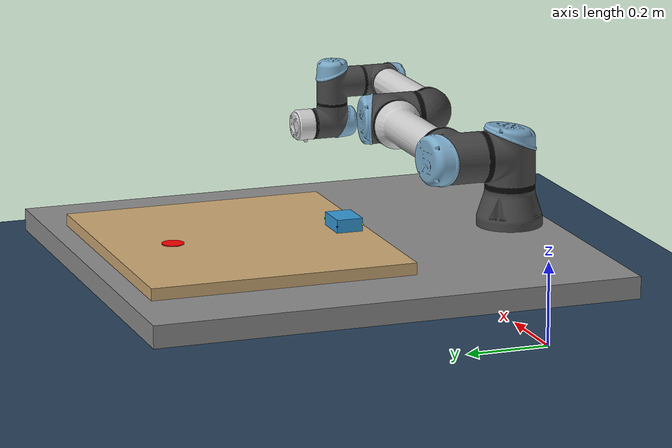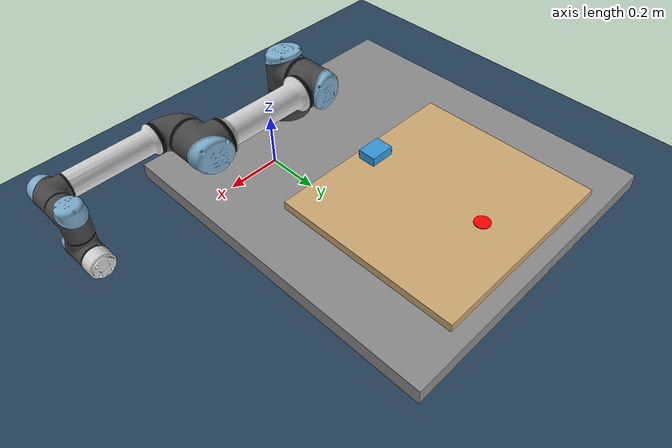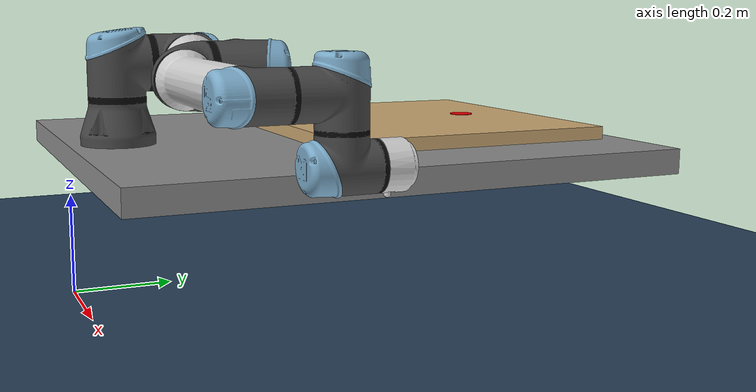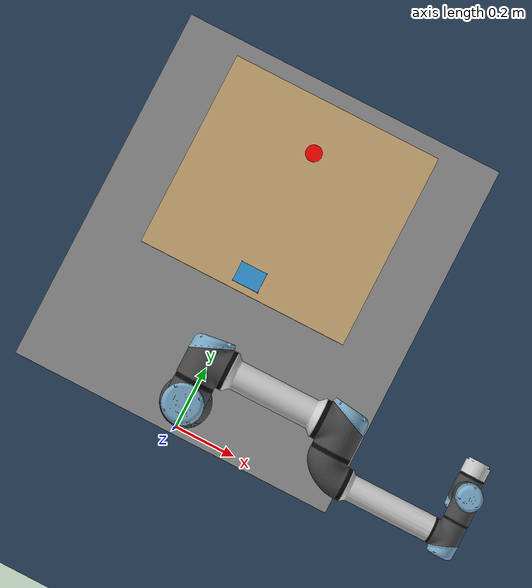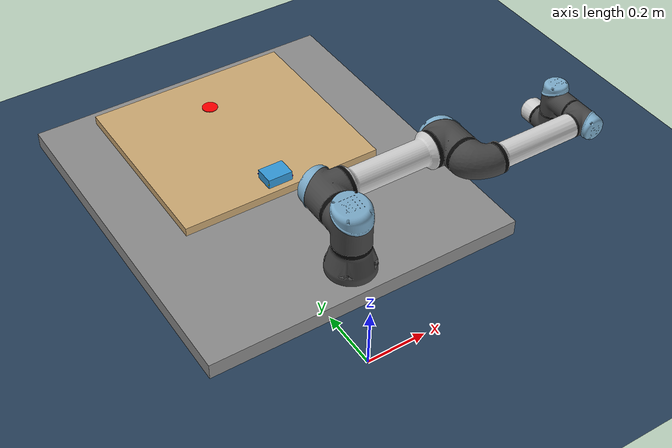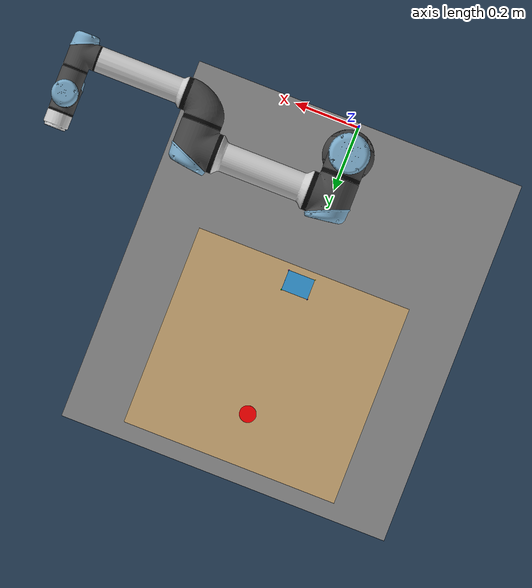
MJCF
<mujoco model="push">
  <compiler angle="radian" autolimits="true"/>

  <include file="../common/environment.xml"/>
  <include file="../common/robots/ur5e_gripper.xml"/>
  <include file="../objects/slider.xml"/>

  <worldbody>
    <!-- Tracking camera on the slider -->
    <camera name="slider_track" mode="targetbodycom" target="slider"
      pos="0.35 0.5 0.65" fovy="50"/>
  </worldbody>

  <contact>
    <!-- Robot base sits on table — exclude to prevent jitter -->
    <exclude body1="base" body2="table"/>
    <!-- Wrist/gripper collision capsules extend beyond the visual mesh at
         table height; exclude so the arm can work at table-surface level. -->
    <exclude body1="wrist_1_link" body2="table"/>
    <exclude body1="wrist_2_link" body2="table"/>
    <exclude body1="wrist_3_link" body2="table"/>
    <exclude body1="gripper_mount" body2="table"/>
    <exclude body1="base_mount" body2="table"/>
    <exclude body1="gripper_base" body2="table"/>
    <exclude body1="right_driver" body2="table"/>
    <exclude body1="right_coupler" body2="table"/>
    <exclude body1="right_spring_link" body2="table"/>
    <exclude body1="right_follower" body2="table"/>
    <exclude body1="right_pad" body2="table"/>
    <exclude body1="left_driver" body2="table"/>
    <exclude body1="left_coupler" body2="table"/>
    <exclude body1="left_spring_link" body2="table"/>
    <exclude body1="left_follower" body2="table"/>
    <exclude body1="left_pad" body2="table"/>

    <!-- Same wrist/gripper exclusions vs the work surface (arm operates above it) -->
    <exclude body1="wrist_1_link" body2="work_surface"/>
    <exclude body1="wrist_2_link" body2="work_surface"/>
    <exclude body1="wrist_3_link" body2="work_surface"/>
    <exclude body1="gripper_mount" body2="work_surface"/>
    <exclude body1="base_mount" body2="work_surface"/>
    <exclude body1="gripper_base" body2="work_surface"/>
    <exclude body1="right_driver" body2="work_surface"/>
    <exclude body1="right_coupler" body2="work_surface"/>
    <exclude body1="right_spring_link" body2="work_surface"/>
    <exclude body1="right_follower" body2="work_surface"/>
    <exclude body1="right_pad" body2="work_surface"/>
    <exclude body1="left_driver" body2="work_surface"/>
    <exclude body1="left_coupler" body2="work_surface"/>
    <exclude body1="left_spring_link" body2="work_surface"/>
    <exclude body1="left_follower" body2="work_surface"/>
    <exclude body1="left_pad" body2="work_surface"/>

    <!-- Slider-table: mu=0.35, condim=4 for torsional friction (Hogan 2016) -->
    <pair geom1="slider_geom" geom2="table_surface" condim="4"
      friction="0.35 0.35 0.005 0.001 0.001"
      solref="0.02 1" solimp="0.9 0.95 0.001 0.5 2"/>

    <!-- Slider-work surface: same friction model as the table -->
    <pair geom1="slider_geom" geom2="work_surface_geom" condim="4"
      friction="0.35 0.35 0.005 0.001 0.001"
      solref="0.02 1" solimp="0.9 0.95 0.001 0.5 2"/>

    <!-- Gripper pad vs slider: mu=0.3, condim=4 (Hogan 2016 pusher-slider) -->
    <pair geom1="right_pad1" geom2="slider_geom" condim="4"
      friction="0.3 0.3 0.005 0.001 0.001"
      solref="0.004 1" solimp="0.95 0.99 0.001 0.5 2"/>
    <pair geom1="right_pad2" geom2="slider_geom" condim="4"
      friction="0.3 0.3 0.005 0.001 0.001"
      solref="0.004 1" solimp="0.95 0.99 0.001 0.5 2"/>
    <pair geom1="left_pad1" geom2="slider_geom" condim="4"
      friction="0.3 0.3 0.005 0.001 0.001"
      solref="0.004 1" solimp="0.95 0.99 0.001 0.5 2"/>
    <pair geom1="left_pad2" geom2="slider_geom" condim="4"
      friction="0.3 0.3 0.005 0.001 0.001"
      solref="0.004 1" solimp="0.95 0.99 0.001 0.5 2"/>
  </contact>

  <keyframe>
    <!-- qpos: 6 arm + 8 gripper (closed) + 7 slider_freejoint = 21 values
         ctrl: 6 arm + 1 gripper (255=closed) = 7 values -->
    <key name="ready"
      qpos="1.1803 -1.6653 2.4917 -2.3972 -1.5708 -0.3905
             0.782171 0.000500 0.780958 -0.757842 0.782169 0.000503 0.780896 -0.758075
             0 0.5 0.342 1 0 0 0"
      ctrl="1.1803 -1.6708 2.4842 -2.4020 -1.5708 -0.3905 255"/>
  </keyframe>
</mujoco>

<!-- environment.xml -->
<mujoco model="environment">

  <option integrator="implicitfast" timestep="0.002" cone="elliptic" impratio="10">
    <flag warmstart="enable"/>
  </option>

  <statistic center="0 0.4 0.35" extent="0.8"/>

  <visual>
    <headlight diffuse="0.6 0.6 0.6" ambient="0.3 0.3 0.3" specular="0 0 0"/>
    <rgba haze="0.15 0.25 0.35 1"/>
    <global azimuth="120" elevation="-20" offwidth="1920" offheight="1440"/>
  </visual>

  <default>
    <default class="table_contact">
      <geom condim="4" friction="0.5 0.005 0.001"/>
    </default>
  </default>

  <asset>
    <texture type="skybox" builtin="gradient" rgb1="0.3 0.5 0.7" rgb2="0 0 0"
      width="512" height="3072"/>
    <texture type="2d" name="table_tex" builtin="checker" mark="edge"
      rgb1="0.6 0.6 0.6" rgb2="0.5 0.5 0.5" markrgb="0.4 0.4 0.4"
      width="300" height="300"/>
    <texture type="2d" name="groundplane" builtin="checker" mark="edge"
      rgb1="0.2 0.3 0.4" rgb2="0.1 0.2 0.3" markrgb="0.8 0.8 0.8"
      width="300" height="300"/>
    <material name="table_mat" texture="table_tex" texuniform="true"
      texrepeat="3 3" reflectance="0.1"/>
    <material name="work_mat" rgba="0.80 0.66 0.45 1"
      specular="0.1" shininess="0.1" reflectance="0.0"/>
    <material name="groundplane" texture="groundplane" texuniform="true"
      texrepeat="5 5" reflectance="0.2"/>
  </asset>

  <worldbody>
    <light pos="0 0.4 1.5" dir="0 0 -1" directional="true"/>

    <!-- Ground plane -->
    <geom name="floor" size="0 0 0.05" type="plane" material="groundplane"/>

    <!-- Table: surface at z=0.3, extended in +y (to y=1.1) to fully support the work surface -->
    <body name="table" pos="0 0.55 0.275">
      <geom name="table_surface" type="box" size="0.5 0.55 0.025"
        class="table_contact" material="table_mat" mass="50"/>
    </body>

    <body name="work_surface" pos="0 0.75 0.3135">
      <geom name="work_surface_geom" type="box" size="0.325 0.3 0.0135"
        class="table_contact" material="work_mat" mass="20"/>
    </body>

    <!-- Top-down camera centered on push area -->
    <camera name="top_down" pos="0 0.5 1.2" xyaxes="1 0 0 0 1 0" fovy="45"/>
    <!-- Side view -->
    <camera name="side" pos="0.7 0.5 0.55" xyaxes="0 1 0 -0.25 0 0.97" fovy="60"/>
  </worldbody>
</mujoco>

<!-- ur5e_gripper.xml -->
<mujoco model="ur5e_gripper">
  <!-- meshdir is relative to the TOP-LEVEL scene file's dir (scenes/tasks/),
       not this file's dir, because MuJoCo resolves include/mesh paths from the
       main model file. -->
  <compiler angle="radian" meshdir="../../assets/mujoco_menagerie" autolimits="true"/>

  <default>
    <default class="ur5e">
      <material specular="0.5" shininess="0.25"/>
      <joint axis="0 1 0" range="-6.28319 6.28319" armature="0.1"/>
      <general gaintype="fixed" biastype="affine" ctrlrange="-6.2831 6.2831" gainprm="2000" biasprm="0 -2000 -400"
        forcerange="-150 150"/>
      <default class="size3">
        <default class="size3_limited">
          <joint range="-3.1415 3.1415"/>
          <general ctrlrange="-3.1415 3.1415"/>
        </default>
      </default>
      <default class="size1">
        <general gainprm="500" biasprm="0 -500 -100" forcerange="-28 28"/>
      </default>
      <default class="visual">
        <geom type="mesh" contype="0" conaffinity="0" group="2"/>
      </default>
      <default class="collision">
        <geom type="capsule" group="3"/>
        <default class="eef_collision">
          <geom type="cylinder"/>
        </default>
      </default>
      <site size="0.001" rgba="0.5 0.5 0.5 0.3" group="4"/>
    </default>

    <default class="2f85">
      <mesh scale="0.001 0.001 0.001"/>
      <general biastype="affine"/>
      <joint axis="1 0 0"/>
      <default class="driver">
        <joint range="0 0.8" armature="0.005" damping="0.1" solimplimit="0.95 0.99 0.001" solreflimit="0.005 1"/>
      </default>
      <default class="follower">
        <joint range="-0.872664 0.872664" armature="0.001" pos="0 -0.018 0.0065" solimplimit="0.95 0.99 0.001"
          solreflimit="0.005 1"/>
      </default>
      <default class="spring_link">
        <joint range="-0.29670597283 0.8" armature="0.001" stiffness="0.05" springref="2.62" damping="0.00125"/>
      </default>
      <default class="coupler">
        <joint range="-1.57 0" armature="0.001" solimplimit="0.95 0.99 0.001" solreflimit="0.005 1"/>
      </default>
      <default class="gripper_visual">
        <geom type="mesh" contype="0" conaffinity="0" group="2"/>
      </default>
      <default class="gripper_collision">
        <geom type="mesh" group="3"/>
        <default class="pad_box1">
          <geom mass="0" type="box" pos="0 -0.0026 0.028125" size="0.011 0.004 0.009375" friction="0.7"
            solimp="0.95 0.99 0.001" solref="0.004 1" priority="1" rgba="0.55 0.55 0.55 1"/>
        </default>
        <default class="pad_box2">
          <geom mass="0" type="box" pos="0 -0.0026 0.009375" size="0.011 0.004 0.009375" friction="0.6"
            solimp="0.95 0.99 0.001" solref="0.004 1" priority="1" rgba="0.45 0.45 0.45 1"/>
        </default>
      </default>
    </default>
  </default>

  <asset>
    <!-- UR5e materials -->
    <material class="ur5e" name="black" rgba="0.033 0.033 0.033 1"/>
    <material class="ur5e" name="jointgray" rgba="0.278 0.278 0.278 1"/>
    <material class="ur5e" name="linkgray" rgba="0.82 0.82 0.82 1"/>
    <material class="ur5e" name="urblue" rgba="0.49 0.678 0.8 1"/>

    <!-- Robotiq 2F-85 materials -->
    <material name="gripper_metal" rgba="0.58 0.58 0.58 1"/>
    <material name="gripper_silicone" rgba="0.1882 0.1882 0.1882 1"/>
    <material name="gripper_gray" rgba="0.4627 0.4627 0.4627 1"/>
    <material name="gripper_black" rgba="0.149 0.149 0.149 1"/>

    <!-- UR5e meshes -->
    <mesh file="universal_robots_ur5e/assets/base_0.obj"/>
    <mesh file="universal_robots_ur5e/assets/base_1.obj"/>
    <mesh file="universal_robots_ur5e/assets/shoulder_0.obj"/>
    <mesh file="universal_robots_ur5e/assets/shoulder_1.obj"/>
    <mesh file="universal_robots_ur5e/assets/shoulder_2.obj"/>
    <mesh file="universal_robots_ur5e/assets/upperarm_0.obj"/>
    <mesh file="universal_robots_ur5e/assets/upperarm_1.obj"/>
    <mesh file="universal_robots_ur5e/assets/upperarm_2.obj"/>
    <mesh file="universal_robots_ur5e/assets/upperarm_3.obj"/>
    <mesh file="universal_robots_ur5e/assets/forearm_0.obj"/>
    <mesh file="universal_robots_ur5e/assets/forearm_1.obj"/>
    <mesh file="universal_robots_ur5e/assets/forearm_2.obj"/>
    <mesh file="universal_robots_ur5e/assets/forearm_3.obj"/>
    <mesh file="universal_robots_ur5e/assets/wrist1_0.obj"/>
    <mesh file="universal_robots_ur5e/assets/wrist1_1.obj"/>
    <mesh file="universal_robots_ur5e/assets/wrist1_2.obj"/>
    <mesh file="universal_robots_ur5e/assets/wrist2_0.obj"/>
    <mesh file="universal_robots_ur5e/assets/wrist2_1.obj"/>
    <mesh file="universal_robots_ur5e/assets/wrist2_2.obj"/>
    <mesh file="universal_robots_ur5e/assets/wrist3.obj"/>

    <!-- Robotiq 2F-85 meshes -->
    <mesh class="2f85" name="gripper_base_mount" file="robotiq_2f85/assets/base_mount.stl"/>
    <mesh class="2f85" name="gripper_base" file="robotiq_2f85/assets/base.stl"/>
    <mesh class="2f85" name="gripper_driver" file="robotiq_2f85/assets/driver.stl"/>
    <mesh class="2f85" name="gripper_coupler" file="robotiq_2f85/assets/coupler.stl"/>
    <mesh class="2f85" name="gripper_follower" file="robotiq_2f85/assets/follower.stl"/>
    <mesh class="2f85" name="gripper_pad" file="robotiq_2f85/assets/pad.stl"/>
    <mesh class="2f85" name="gripper_silicone_pad" file="robotiq_2f85/assets/silicone_pad.stl"/>
    <mesh class="2f85" name="gripper_spring_link" file="robotiq_2f85/assets/spring_link.stl"/>
  </asset>

  <worldbody>
    <light name="spotlight" mode="targetbodycom" target="wrist_2_link" pos="0 -1 2"/>
    <body name="base" pos="0 0.1 0.3" quat="1 0 0 0" childclass="ur5e">
      <inertial mass="4.0" pos="0 0 0" diaginertia="0.00443333156 0.00443333156 0.0072"/>
      <geom mesh="base_0" material="black" class="visual"/>
      <geom mesh="base_1" material="jointgray" class="visual"/>
      <body name="shoulder_link" pos="0 0 0.163">
        <inertial mass="3.7" pos="0 0 0" diaginertia="0.0102675 0.0102675 0.00666"/>
        <joint name="shoulder_pan_joint" class="size3" axis="0 0 1"/>
        <geom mesh="shoulder_0" material="urblue" class="visual"/>
        <geom mesh="shoulder_1" material="black" class="visual"/>
        <geom mesh="shoulder_2" material="jointgray" class="visual"/>
        <geom class="collision" size="0.06 0.06" pos="0 0 -0.04"/>
        <body name="upper_arm_link" pos="0 0.138 0" quat="1 0 1 0">
          <inertial mass="8.393" pos="0 0 0.2125" diaginertia="0.133886 0.133886 0.0151074"/>
          <joint name="shoulder_lift_joint" class="size3"/>
          <geom mesh="upperarm_0" material="linkgray" class="visual"/>
          <geom mesh="upperarm_1" material="black" class="visual"/>
          <geom mesh="upperarm_2" material="jointgray" class="visual"/>
          <geom mesh="upperarm_3" material="urblue" class="visual"/>
          <geom class="collision" pos="0 -0.04 0" quat="1 1 0 0" size="0.06 0.06"/>
          <geom class="collision" size="0.05 0.2" pos="0 0 0.2"/>
          <body name="forearm_link" pos="0 -0.131 0.425">
            <inertial mass="2.275" pos="0 0 0.196" diaginertia="0.0311796 0.0311796 0.004095"/>
            <joint name="elbow_joint" class="size3_limited"/>
            <geom mesh="forearm_0" material="urblue" class="visual"/>
            <geom mesh="forearm_1" material="linkgray" class="visual"/>
            <geom mesh="forearm_2" material="black" class="visual"/>
            <geom mesh="forearm_3" material="jointgray" class="visual"/>
            <geom class="collision" pos="0 0.08 0" quat="1 1 0 0" size="0.055 0.06"/>
            <geom class="collision" size="0.038 0.19" pos="0 0 0.2"/>
            <body name="wrist_1_link" pos="0 0 0.392" quat="1 0 1 0">
              <inertial mass="1.219" pos="0 0.127 0" diaginertia="0.0025599 0.0025599 0.0021942"/>
              <joint name="wrist_1_joint" class="size1"/>
              <geom mesh="wrist1_0" material="black" class="visual"/>
              <geom mesh="wrist1_1" material="urblue" class="visual"/>
              <geom mesh="wrist1_2" material="jointgray" class="visual"/>
              <geom class="collision" pos="0 0.05 0" quat="1 1 0 0" size="0.04 0.07"/>
              <body name="wrist_2_link" pos="0 0.127 0">
                <inertial mass="1.219" pos="0 0 0.1" diaginertia="0.0025599 0.0025599 0.0021942"/>
                <joint name="wrist_2_joint" axis="0 0 1" class="size1"/>
                <geom mesh="wrist2_0" material="black" class="visual"/>
                <geom mesh="wrist2_1" material="urblue" class="visual"/>
                <geom mesh="wrist2_2" material="jointgray" class="visual"/>
                <geom class="collision" size="0.04 0.06" pos="0 0 0.04"/>
                <geom class="collision" pos="0 0.02 0.1" quat="1 1 0 0" size="0.04 0.04"/>
                <body name="wrist_3_link" pos="0 0 0.1">
                  <inertial mass="0.1889" pos="0 0.0771683 0" quat="1 0 0 1"
                    diaginertia="0.000132134 9.90863e-05 9.90863e-05"/>
                  <joint name="wrist_3_joint" class="size1"/>
                  <geom material="linkgray" mesh="wrist3" class="visual"/>
                  <geom class="eef_collision" pos="0 0.08 0" quat="1 1 0 0" size="0.04 0.02"/>
                  <site name="attachment_site" pos="0 0.1 0" quat="-1 1 0 0"/>

                  <!-- Robotiq 2F-85 gripper mounted at tool flange.
                       quat="1 -1 0 0" = R_x(-90 deg): gripper +Z -> wrist +Y (tool axis) -->
                  <body name="gripper_mount" pos="0 0.1 0" quat="1 -1 0 0" childclass="2f85">
                    <body name="base_mount" pos="0 0 0.007">
                      <geom class="gripper_visual" mesh="gripper_base_mount" material="gripper_black"/>
                      <geom class="gripper_collision" mesh="gripper_base_mount"/>
                      <body name="gripper_base" pos="0 0 0.0038" quat="1 0 0 -1">
                        <inertial mass="0.777441" pos="0 -2.70394e-05 0.0354675" quat="1 -0.00152849 0 0"
                          diaginertia="0.000260285 0.000225381 0.000152708"/>
                        <geom class="gripper_visual" mesh="gripper_base" material="gripper_black"/>
                        <geom class="gripper_collision" mesh="gripper_base"/>
                        <site name="pinch" pos="0 0 0.145" type="sphere" group="5"
                          rgba="0.9 0.9 0.9 1" size="0.005"/>

                        <!-- Right-hand 4-bar linkage -->
                        <body name="right_driver" pos="0 0.0306011 0.054904">
                          <inertial mass="0.00899563" pos="2.96931e-12 0.0177547 0.00107314"
                            quat="0.681301 0.732003 0 0"
                            diaginertia="1.72352e-06 1.60906e-06 3.22006e-07"/>
                          <joint name="right_driver_joint" class="driver"/>
                          <geom class="gripper_visual" mesh="gripper_driver" material="gripper_gray"/>
                          <geom class="gripper_collision" mesh="gripper_driver"/>
                          <body name="right_coupler" pos="0 0.0315 -0.0041">
                            <inertial mass="0.0140974" pos="0 0.00301209 0.0232175"
                              quat="0.705636 -0.0455904 0.0455904 0.705636"
                              diaginertia="4.16206e-06 3.52216e-06 8.88131e-07"/>
                            <joint name="right_coupler_joint" class="coupler"/>
                            <geom class="gripper_visual" mesh="gripper_coupler" material="gripper_black"/>
                            <geom class="gripper_collision" mesh="gripper_coupler"/>
                          </body>
                        </body>
                        <body name="right_spring_link" pos="0 0.0132 0.0609">
                          <inertial mass="0.0221642" pos="-8.65005e-09 0.0181624 0.0212658"
                            quat="0.663403 -0.244737 0.244737 0.663403"
                            diaginertia="8.96853e-06 6.71733e-06 2.63931e-06"/>
                          <joint name="right_spring_link_joint" class="spring_link"/>
                          <geom class="gripper_visual" mesh="gripper_spring_link" material="gripper_black"/>
                          <geom class="gripper_collision" mesh="gripper_spring_link"/>
                          <body name="right_follower" pos="0 0.055 0.0375">
                            <inertial mass="0.0125222" pos="0 -0.011046 0.0124786" quat="1 0.1664 0 0"
                              diaginertia="2.67415e-06 2.4559e-06 6.02031e-07"/>
                            <joint name="right_follower_joint" class="follower"/>
                            <geom class="gripper_visual" mesh="gripper_follower" material="gripper_black"/>
                            <geom class="gripper_collision" mesh="gripper_follower"/>
                            <body name="right_pad" pos="0 -0.0189 0.01352">
                              <geom class="pad_box1" name="right_pad1"/>
                              <geom class="pad_box2" name="right_pad2"/>
                              <inertial mass="0.0035" pos="0 -0.0025 0.0185" quat="0.707107 0 0 0.707107"
                                diaginertia="4.73958e-07 3.64583e-07 1.23958e-07"/>
                              <geom class="gripper_visual" mesh="gripper_pad"/>
                              <body name="right_silicone_pad">
                                <geom class="gripper_visual" mesh="gripper_silicone_pad" material="gripper_black"/>
                              </body>
                            </body>
                          </body>
                        </body>

                        <!-- Left-hand 4-bar linkage -->
                        <body name="left_driver" pos="0 -0.0306011 0.054904" quat="0 0 0 1">
                          <inertial mass="0.00899563" pos="0 0.0177547 0.00107314"
                            quat="0.681301 0.732003 0 0"
                            diaginertia="1.72352e-06 1.60906e-06 3.22006e-07"/>
                          <joint name="left_driver_joint" class="driver"/>
                          <geom class="gripper_visual" mesh="gripper_driver" material="gripper_gray"/>
                          <geom class="gripper_collision" mesh="gripper_driver"/>
                          <body name="left_coupler" pos="0 0.0315 -0.0041">
                            <inertial mass="0.0140974" pos="0 0.00301209 0.0232175"
                              quat="0.705636 -0.0455904 0.0455904 0.705636"
                              diaginertia="4.16206e-06 3.52216e-06 8.88131e-07"/>
                            <joint name="left_coupler_joint" class="coupler"/>
                            <geom class="gripper_visual" mesh="gripper_coupler" material="gripper_black"/>
                            <geom class="gripper_collision" mesh="gripper_coupler"/>
                          </body>
                        </body>
                        <body name="left_spring_link" pos="0 -0.0132 0.0609" quat="0 0 0 1">
                          <inertial mass="0.0221642" pos="-8.65005e-09 0.0181624 0.0212658"
                            quat="0.663403 -0.244737 0.244737 0.663403"
                            diaginertia="8.96853e-06 6.71733e-06 2.63931e-06"/>
                          <joint name="left_spring_link_joint" class="spring_link"/>
                          <geom class="gripper_visual" mesh="gripper_spring_link" material="gripper_black"/>
                          <geom class="gripper_collision" mesh="gripper_spring_link"/>
                          <body name="left_follower" pos="0 0.055 0.0375">
                            <inertial mass="0.0125222" pos="0 -0.011046 0.0124786" quat="1 0.1664 0 0"
                              diaginertia="2.67415e-06 2.4559e-06 6.02031e-07"/>
                            <joint name="left_follower_joint" class="follower"/>
                            <geom class="gripper_visual" mesh="gripper_follower" material="gripper_black"/>
                            <geom class="gripper_collision" mesh="gripper_follower"/>
                            <body name="left_pad" pos="0 -0.0189 0.01352">
                              <geom class="pad_box1" name="left_pad1"/>
                              <geom class="pad_box2" name="left_pad2"/>
                              <inertial mass="0.0035" pos="0 -0.0025 0.0185" quat="1 0 0 1"
                                diaginertia="4.73958e-07 3.64583e-07 1.23958e-07"/>
                              <geom class="gripper_visual" mesh="gripper_pad"/>
                              <body name="left_silicone_pad">
                                <geom class="gripper_visual" mesh="gripper_silicone_pad" material="gripper_black"/>
                              </body>
                            </body>
                          </body>
                        </body>
                      </body>
                    </body>
                  </body>
                </body>
              </body>
            </body>
          </body>
        </body>
      </body>
    </body>
  </worldbody>

  <contact>
    <!-- Robotiq internal mechanism exclusions -->
    <exclude body1="gripper_base" body2="left_driver"/>
    <exclude body1="gripper_base" body2="right_driver"/>
    <exclude body1="gripper_base" body2="left_spring_link"/>
    <exclude body1="gripper_base" body2="right_spring_link"/>
    <exclude body1="right_coupler" body2="right_follower"/>
    <exclude body1="left_coupler" body2="left_follower"/>
  </contact>

  <tendon>
    <fixed name="split">
      <joint joint="right_driver_joint" coef="0.5"/>
      <joint joint="left_driver_joint" coef="0.5"/>
    </fixed>
  </tendon>

  <equality>
    <connect anchor="0 0 0" body1="right_follower" body2="right_coupler"
      solimp="0.95 0.99 0.001" solref="0.005 1"/>
    <connect anchor="0 0 0" body1="left_follower" body2="left_coupler"
      solimp="0.95 0.99 0.001" solref="0.005 1"/>
    <joint joint1="right_driver_joint" joint2="left_driver_joint"
      polycoef="0 1 0 0 0" solimp="0.95 0.99 0.001" solref="0.005 1"/>
  </equality>

  <actuator>
    <!-- UR5e arm actuators -->
    <general class="size3" name="shoulder_pan" joint="shoulder_pan_joint"/>
    <general class="size3" name="shoulder_lift" joint="shoulder_lift_joint"/>
    <general class="size3_limited" name="elbow" joint="elbow_joint"/>
    <general class="size1" name="wrist_1" joint="wrist_1_joint"/>
    <general class="size1" name="wrist_2" joint="wrist_2_joint"/>
    <general class="size1" name="wrist_3" joint="wrist_3_joint"/>
    <!-- Robotiq 2F-85 finger actuator (0=open, 255=closed) -->
    <general class="2f85" name="fingers_actuator" tendon="split" forcerange="-5 5"
      ctrlrange="0 255" gainprm="0.3137255 0 0" biasprm="0 -100 -10"/>
  </actuator>
</mujoco>

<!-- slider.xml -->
<mujoco model="slider">

  <default>
    <default class="slider_contact">
      <geom condim="4" friction="0.35 0.005 0.001"
        solref="0.02 1" solimp="0.9 0.95 0.001 0.5 2"/>
    </default>
  </default>

  <asset>
    <material name="slider_mat" rgba="0.2 0.6 0.85 1"
      specular="0.3" shininess="0.2"/>
  </asset>

  <worldbody>
    <!-- Goal marker: base (0, 0.8) = world (0, 0.9), on the work-surface top (z=0.327) -->
    <site name="goal_mark" pos="0 0.9 0.328" type="cylinder" size="0.025 0.001"
      rgba="1 0 0 1"/>

    <!-- Slider: base-frame start (0, 0.4); z = work-surface top 0.327 + half-height 0.015 = 0.342. -->
    <body name="slider" pos="0 0.5 0.342">
      <freejoint name="slider_joint"/>
      <inertial mass="1.05" pos="0 0 0"
        diaginertia="0.000394 0.000525 0.000164"/>
      <geom name="slider_geom" type="box" size="0.04 0.03 0.015"
        class="slider_contact" material="slider_mat"/>
      <site name="slider_center" pos="0 0 0" size="0.003" rgba="1 0 0 1"/>
      <site name="slider_corner_pp" pos="0.04 0.03 0" size="0.002" rgba="0 1 0 1"/>
      <site name="slider_corner_np" pos="-0.04 0.03 0" size="0.002" rgba="0 0 1 1"/>
      <site name="slider_corner_nn" pos="-0.04 -0.03 0" size="0.002" rgba="1 1 0 1"/>
      <site name="slider_corner_pn" pos="0.04 -0.03 0" size="0.002" rgba="1 0 1 1"/>
    </body>
  </worldbody>
</mujoco>
